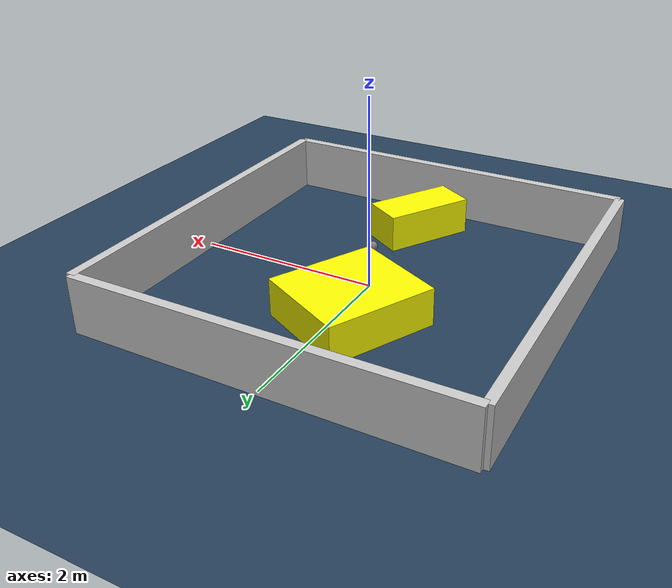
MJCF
<?xml version="1.0" ?>
<mujoco model="generated_environment">
  <option timestep="0.01" integrator="RK4" cone="elliptic"/>
  <default>
    <geom density="1"/>
  </default>
  <asset>
    <texture builtin="gradient" height="3072" rgb1="0.3 0.5 0.7" rgb2="0 0 0" type="skybox" width="512"/>
    <texture builtin="checker" height="300" mark="edge" markrgb="0.8 0.8 0.8" name="groundplane" rgb1="0.2 0.3 0.4" rgb2="0.1 0.2 0.3" type="2d" width="300"/>
    <material name="groundplane" reflectance="0.2" texrepeat="5 5" texture="groundplane" texuniform="true"/>
    <material name="robot" rgba="0.0 1.0 0.0 1"/>
  </asset>
  <worldbody>
    <light dir="0 0 -1" directional="true" pos="0 0 1.5"/>
    <geom condim="4" friction="1.0 0.005 0.001" material="groundplane" name="floor" size="0 0 0.05" type="plane"/>
    <body name="walls">
      <geom name="wall_1" condim="4" pos="-2.0 0.0 0.3" rgba="0.800000011920929 0.800000011920929 0.800000011920929 1.0" size="0.05 2.0 0.3" type="box"/>
      <geom name="wall_2" condim="4" pos="2.0 0.0 0.3" rgba="0.800000011920929 0.800000011920929 0.800000011920929 1.0" size="0.05 2.0 0.3" type="box"/>
      <geom name="wall_3" condim="4" pos="0.0 -2.0 0.3" rgba="0.800000011920929 0.800000011920929 0.800000011920929 1.0" size="2.0 0.05 0.3" type="box"/>
      <geom name="wall_4" condim="4" pos="0.0 2.0 0.3" rgba="0.800000011920929 0.800000011920929 0.800000011920929 1.0" size="2.0 0.05 0.3" type="box"/>
    </body>
    <body name="robot">
      <joint name="joint_x" type="slide" pos="0 0 0" axis="1 0 0"/>
      <joint name="joint_y" type="slide" pos="0 0 0" axis="0 1 0"/>
      <geom name="robot" type="sphere" pos="0.20407062624284933 -0.4658597542455878 0.2" size="0.05" mass="5." friction="1.0 0.005 0.0001" condim="4"/>
      <site name="sensor_ball"/>
    </body>
    <body name="obstacle_1_movable">
      <geom name="obstacle_1_movable" condim="4" pos="-0.1466759215032747 0.6572247196403525 0.2" euler="0 0 63.169237160436374" friction="1.0 0.005 0.001" rgba="1 1 0 1" size="0.5813089859780916 0.5229930694159428 0.2" type="box" mass="0.1"/>
      <joint type="free"/>
    </body>
    <body name="obstacle_2_movable">
      <geom name="obstacle_2_movable" condim="4" pos="0.0726588104548771 -1.3376011668930772 0.2" euler="0 0 58.65201946596895" friction="1.0 0.005 0.001" rgba="1 1 0 1" size="0.49296386852237567 0.23108557195536583 0.2" type="box" mass="0.1"/>
      <joint type="free"/>
    </body>
  </worldbody>
  <actuator>
    <motor name="actuator_x" joint="joint_x" gear="1" ctrlrange="-1 1"/>
    <motor name="actuator_y" joint="joint_y" gear="1" ctrlrange="-1 1"/>
  </actuator>
</mujoco>
